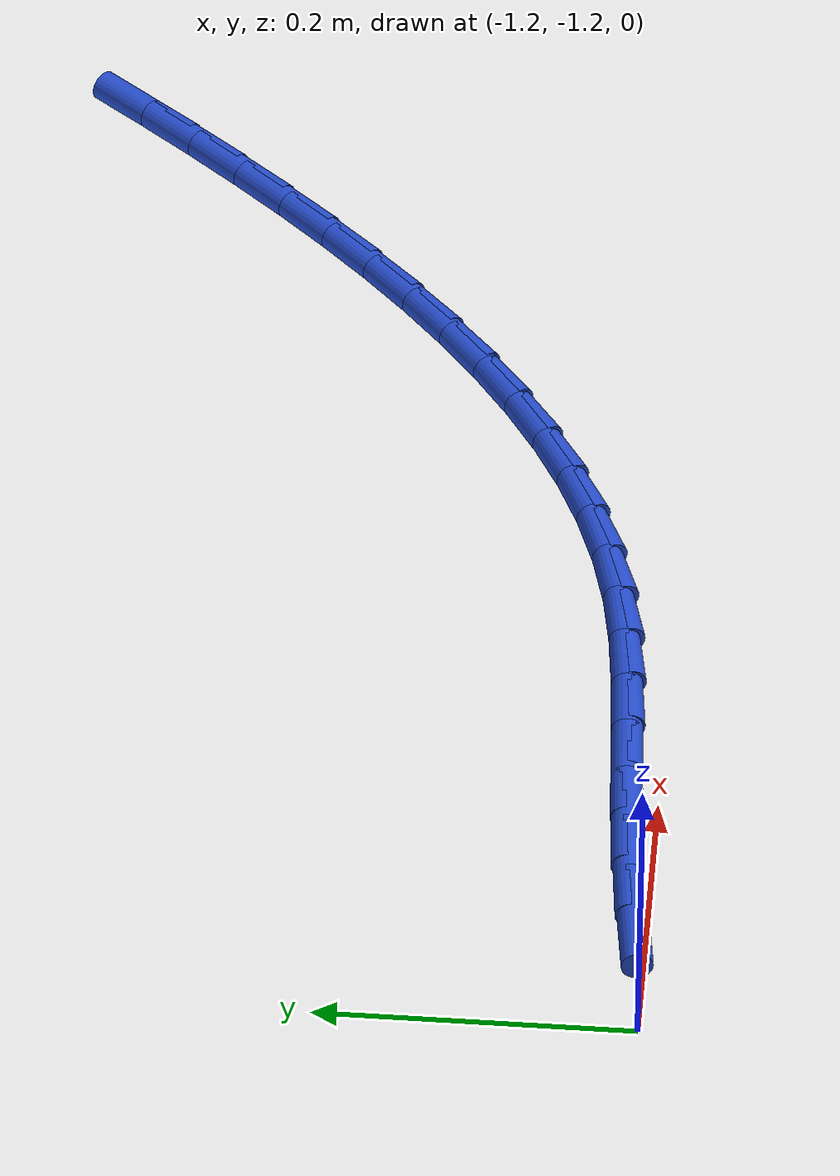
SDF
<sdf version="1.6">
 <world name="default">
  <model name="ground_plane">
   <static>1</static>
   <link name="link">
    <collision name="collision">
     <geometry><plane><normal>0 0 1</normal><size>100 100</size></plane></geometry>
     <surface><friction><ode><mu>100</mu><mu2>50</mu2></ode></friction></surface>
    </collision>
    <visual name="visual">
     <cast_shadows>0</cast_shadows>
     <geometry><plane><normal>0 0 1</normal><size>100 100</size></plane></geometry>
     <material>
      <script><uri>file://media/materials/scripts/gazebo.material</uri><name>Gazebo/WhiteGlow</name></script>
     </material>
    </visual>
   </link>
  </model>
  <model name="line">
   <link name="link_127">
    <pose>-1.1134467954363698 -1.191541633478366 0.01 0 1.57 0.1263470886087387</pose>
    <collision name="collision">
     <geometry><cylinder><radius>0.01</radius><length>0.08</length></cylinder></geometry>
    </collision>
    <visual name="visual">
     <material>
      <script><name>Gazebo/Blue</name><uri>file://media/materials/scripts/gazebo.material</uri></script>
     </material>
     <geometry><cylinder><radius>0.01</radius><length>0.08</length></cylinder></geometry>
    </visual>
   </link>
   <link name="link_128">
    <pose>-1.0693955376111304 -1.1859460785241742 0.01 0 1.57 0.0980486096200689</pose>
    <collision name="collision">
     <geometry><cylinder><radius>0.01</radius><length>0.08</length></cylinder></geometry>
    </collision>
    <visual name="visual">
     <material>
      <script><name>Gazebo/Blue</name><uri>file://media/materials/scripts/gazebo.material</uri></script>
     </material>
     <geometry><cylinder><radius>0.01</radius><length>0.08</length></cylinder></geometry>
    </visual>
   </link>
   <link name="link_129">
    <pose>-1.0259433522211345 -1.1816719468781895 0.01 0 1.57 0.06870420700618851</pose>
    <collision name="collision">
     <geometry><cylinder><radius>0.01</radius><length>0.08</length></cylinder></geometry>
    </collision>
    <visual name="visual">
     <material>
      <script><name>Gazebo/Blue</name><uri>file://media/materials/scripts/gazebo.material</uri></script>
     </material>
     <geometry><cylinder><radius>0.01</radius><length>0.08</length></cylinder></geometry>
    </visual>
   </link>
   <link name="link_130">
    <pose>-0.9832772695002466 -1.1787359865378424 0.01 0 1.57 0.05824967799925859</pose>
    <collision name="collision">
     <geometry><cylinder><radius>0.01</radius><length>0.08</length></cylinder></geometry>
    </collision>
    <visual name="visual">
     <material>
      <script><name>Gazebo/Blue</name><uri>file://media/materials/scripts/gazebo.material</uri></script>
     </material>
     <geometry><cylinder><radius>0.01</radius><length>0.08</length></cylinder></geometry>
    </visual>
   </link>
   <link name="link_131">
    <pose>-0.9414606592762632 -1.176297423798432 0.01 0 1.57 0.06982174730639261</pose>
    <collision name="collision">
     <geometry><cylinder><radius>0.01</radius><length>0.08</length></cylinder></geometry>
    </collision>
    <visual name="visual">
     <material>
      <script><name>Gazebo/Blue</name><uri>file://media/materials/scripts/gazebo.material</uri></script>
     </material>
     <geometry><cylinder><radius>0.01</radius><length>0.08</length></cylinder></geometry>
    </visual>
   </link>
   <link name="link_132">
    <pose>-0.9005454290436339 -1.173435999532908 0.01 0 1.57 0.10482804889970909</pose>
    <collision name="collision">
     <geometry><cylinder><radius>0.01</radius><length>0.08</length></cylinder></geometry>
    </collision>
    <visual name="visual">
     <material>
      <script><name>Gazebo/Blue</name><uri>file://media/materials/scripts/gazebo.material</uri></script>
     </material>
     <geometry><cylinder><radius>0.01</radius><length>0.08</length></cylinder></geometry>
    </visual>
   </link>
   <link name="link_133">
    <pose>-0.8605834862968064 -1.169231454614219 0.01 0 1.57 0.16452755197959157</pose>
    <collision name="collision">
     <geometry><cylinder><radius>0.01</radius><length>0.08</length></cylinder></geometry>
    </collision>
    <visual name="visual">
     <material>
      <script><name>Gazebo/Blue</name><uri>file://media/materials/scripts/gazebo.material</uri></script>
     </material>
     <geometry><cylinder><radius>0.01</radius><length>0.08</length></cylinder></geometry>
    </visual>
   </link>
   <link name="link_134">
    <pose>-0.8216267385302293 -1.1627635299153152 0.01 0 1.57 0.2464756664194984</pose>
    <collision name="collision">
     <geometry><cylinder><radius>0.01</radius><length>0.08</length></cylinder></geometry>
    </collision>
    <visual name="visual">
     <material>
      <script><name>Gazebo/Blue</name><uri>file://media/materials/scripts/gazebo.material</uri></script>
     </material>
     <geometry><cylinder><radius>0.01</radius><length>0.08</length></cylinder></geometry>
    </visual>
   </link>
   <link name="link_135">
    <pose>-0.7837177673706887 -1.1532259677852468 0.01 0 1.57 0.33133181695151753</pose>
    <collision name="collision">
     <geometry><cylinder><radius>0.01</radius><length>0.08</length></cylinder></geometry>
    </collision>
    <visual name="visual">
     <material>
      <script><name>Gazebo/Blue</name><uri>file://media/materials/scripts/gazebo.material</uri></script>
     </material>
     <geometry><cylinder><radius>0.01</radius><length>0.08</length></cylinder></geometry>
    </visual>
   </link>
   <link name="link_136">
    <pose>-0.7468396908090847 -1.1405394072556831 0.01 0 1.57 0.41074163344328624</pose>
    <collision name="collision">
     <geometry><cylinder><radius>0.01</radius><length>0.08</length></cylinder></geometry>
    </collision>
    <visual name="visual">
     <material>
      <script><name>Gazebo/Blue</name><uri>file://media/materials/scripts/gazebo.material</uri></script>
     </material>
     <geometry><cylinder><radius>0.01</radius><length>0.08</length></cylinder></geometry>
    </visual>
   </link>
   <link name="link_137">
    <pose>-0.7109522735906398 -1.1249099626165737 0.01 0 1.57 0.48397609946591025</pose>
    <collision name="collision">
     <geometry><cylinder><radius>0.01</radius><length>0.08</length></cylinder></geometry>
    </collision>
    <visual name="visual">
     <material>
      <script><name>Gazebo/Blue</name><uri>file://media/materials/scripts/gazebo.material</uri></script>
     </material>
     <geometry><cylinder><radius>0.01</radius><length>0.08</length></cylinder></geometry>
    </visual>
   </link>
   <link name="link_138">
    <pose>-0.6760152250507985 -1.1065444254992602 0.01 0 1.57 0.5506986878916789</pose>
    <collision name="collision">
     <geometry><cylinder><radius>0.01</radius><length>0.08</length></cylinder></geometry>
    </collision>
    <visual name="visual">
     <material>
      <script><name>Gazebo/Blue</name><uri>file://media/materials/scripts/gazebo.material</uri></script>
     </material>
     <geometry><cylinder><radius>0.01</radius><length>0.08</length></cylinder></geometry>
    </visual>
   </link>
   <link name="link_139">
    <pose>-0.6419882545250056 -1.0856495875350831 0.01 0 1.57 0.610874093432827</pose>
    <collision name="collision">
     <geometry><cylinder><radius>0.01</radius><length>0.08</length></cylinder></geometry>
    </collision>
    <visual name="visual">
     <material>
      <script><name>Gazebo/Blue</name><uri>file://media/materials/scripts/gazebo.material</uri></script>
     </material>
     <geometry><cylinder><radius>0.01</radius><length>0.08</length></cylinder></geometry>
    </visual>
   </link>
   <link name="link_140">
    <pose>-0.6088310713487072 -1.0624322403553845 0.01 0 1.57 0.6646815211587366</pose>
    <collision name="collision">
     <geometry><cylinder><radius>0.01</radius><length>0.08</length></cylinder></geometry>
    </collision>
    <visual name="visual">
     <material>
      <script><name>Gazebo/Blue</name><uri>file://media/materials/scripts/gazebo.material</uri></script>
     </material>
     <geometry><cylinder><radius>0.01</radius><length>0.08</length></cylinder></geometry>
    </visual>
   </link>
   <link name="link_141">
    <pose>-0.5765033848573483 -1.0370991755915056 0.01 0 1.57 0.7124340909317832</pose>
    <collision name="collision">
     <geometry><cylinder><radius>0.01</radius><length>0.08</length></cylinder></geometry>
    </collision>
    <visual name="visual">
     <material>
      <script><name>Gazebo/Blue</name><uri>file://media/materials/scripts/gazebo.material</uri></script>
     </material>
     <geometry><cylinder><radius>0.01</radius><length>0.08</length></cylinder></geometry>
    </visual>
   </link>
   <link name="link_142">
    <pose>-0.5449649043863737 -1.0098571848747868 0.01 0 1.57 0.75451352743076</pose>
    <collision name="collision">
     <geometry><cylinder><radius>0.01</radius><length>0.08</length></cylinder></geometry>
    </collision>
    <visual name="visual">
     <material>
      <script><name>Gazebo/Blue</name><uri>file://media/materials/scripts/gazebo.material</uri></script>
     </material>
     <geometry><cylinder><radius>0.01</radius><length>0.08</length></cylinder></geometry>
    </visual>
   </link>
   <link name="link_143">
    <pose>-0.5141753392712302 -0.9809130598365713 0.01 0 1.57 0.7913221669098118</pose>
    <collision name="collision">
     <geometry><cylinder><radius>0.01</radius><length>0.08</length></cylinder></geometry>
    </collision>
    <visual name="visual">
     <material>
      <script><name>Gazebo/Blue</name><uri>file://media/materials/scripts/gazebo.material</uri></script>
     </material>
     <geometry><cylinder><radius>0.01</radius><length>0.08</length></cylinder></geometry>
    </visual>
   </link>
   <link name="link_144">
    <pose>-0.4840943988473619 -0.950473592108199 0.01 0 1.57 0.8232503516210036</pose>
    <collision name="collision">
     <geometry><cylinder><radius>0.01</radius><length>0.08</length></cylinder></geometry>
    </collision>
    <visual name="visual">
     <material>
      <script><name>Gazebo/Blue</name><uri>file://media/materials/scripts/gazebo.material</uri></script>
     </material>
     <geometry><cylinder><radius>0.01</radius><length>0.08</length></cylinder></geometry>
    </visual>
   </link>
   <link name="link_145">
    <pose>-0.4546817924502148 -0.9187455733210119 0.01 0 1.57 0.850655776468944</pose>
    <collision name="collision">
     <geometry><cylinder><radius>0.01</radius><length>0.08</length></cylinder></geometry>
    </collision>
    <visual name="visual">
     <material>
      <script><name>Gazebo/Blue</name><uri>file://media/materials/scripts/gazebo.material</uri></script>
     </material>
     <geometry><cylinder><radius>0.01</radius><length>0.08</length></cylinder></geometry>
    </visual>
   </link>
   <link name="link_146">
    <pose>-0.4258972294152339 -0.885935795106351 0.01 0 1.57 0.8738512676461931</pose>
    <collision name="collision">
     <geometry><cylinder><radius>0.01</radius><length>0.08</length></cylinder></geometry>
    </collision>
    <visual name="visual">
     <material>
      <script><name>Gazebo/Blue</name><uri>file://media/materials/scripts/gazebo.material</uri></script>
     </material>
     <geometry><cylinder><radius>0.01</radius><length>0.08</length></cylinder></geometry>
    </visual>
   </link>
   <link name="link_147">
    <pose>-0.39770041907786424 -0.8522510490955577 0.01 0 1.57 0.8930980093840429</pose>
    <collision name="collision">
     <geometry><cylinder><radius>0.01</radius><length>0.08</length></cylinder></geometry>
    </collision>
    <visual name="visual">
     <material>
      <script><name>Gazebo/Blue</name><uri>file://media/materials/scripts/gazebo.material</uri></script>
     </material>
     <geometry><cylinder><radius>0.01</radius><length>0.08</length></cylinder></geometry>
    </visual>
   </link>
   <link name="link_148">
    <pose>-0.3700510707735522 -0.817898126919974 0.01 0 1.57 0.9086019209590961</pose>
    <collision name="collision">
     <geometry><cylinder><radius>0.01</radius><length>0.08</length></cylinder></geometry>
    </collision>
    <visual name="visual">
     <material>
      <script><name>Gazebo/Blue</name><uri>file://media/materials/scripts/gazebo.material</uri></script>
     </material>
     <geometry><cylinder><radius>0.01</radius><length>0.08</length></cylinder></geometry>
    </visual>
   </link>
  </model>
 </world>
</sdf>
